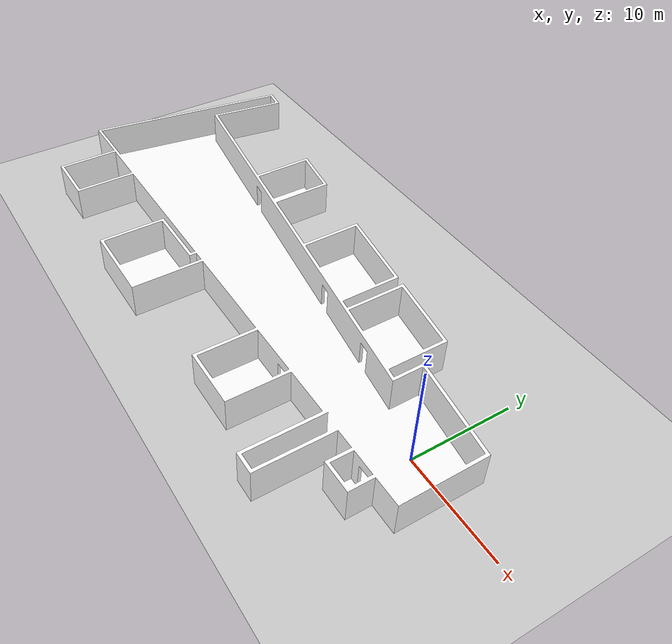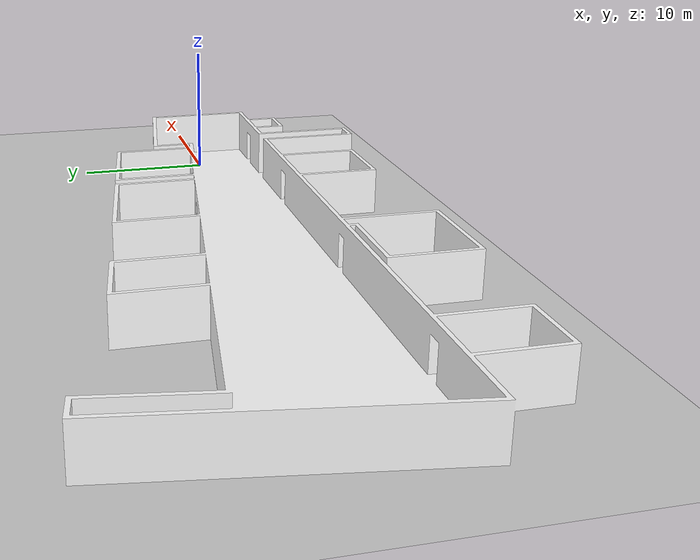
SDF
<?xml version="1.0"?>
<sdf version="1.4">
  <world name="default">
    <include>
      <uri>model://ground_plane</uri>
    </include>
    <include>
      <uri>model://sun</uri>
    </include>
    <model name="my_mesh">
      <pose>0 0 0  0 0 0</pose>
      <static>true</static>
      <link name="body">
	<visual name="visual">
  	<pose>0 0 0 0 0 0</pose>
 	 <geometry>
  	  <mesh><uri>model://Freiburg101/Freiburg101.dae</uri></mesh>
  	</geometry>
	</visual>
	<collision name="collision">
  	<pose>0 0 0 0 0 0</pose>
 	 <geometry>
  	  <mesh><uri>model://Freiburg101/Freiburg101.dae</uri></mesh>
  	</geometry>
	</collision>
      </link>
    </model>
  </world>
</sdf>
